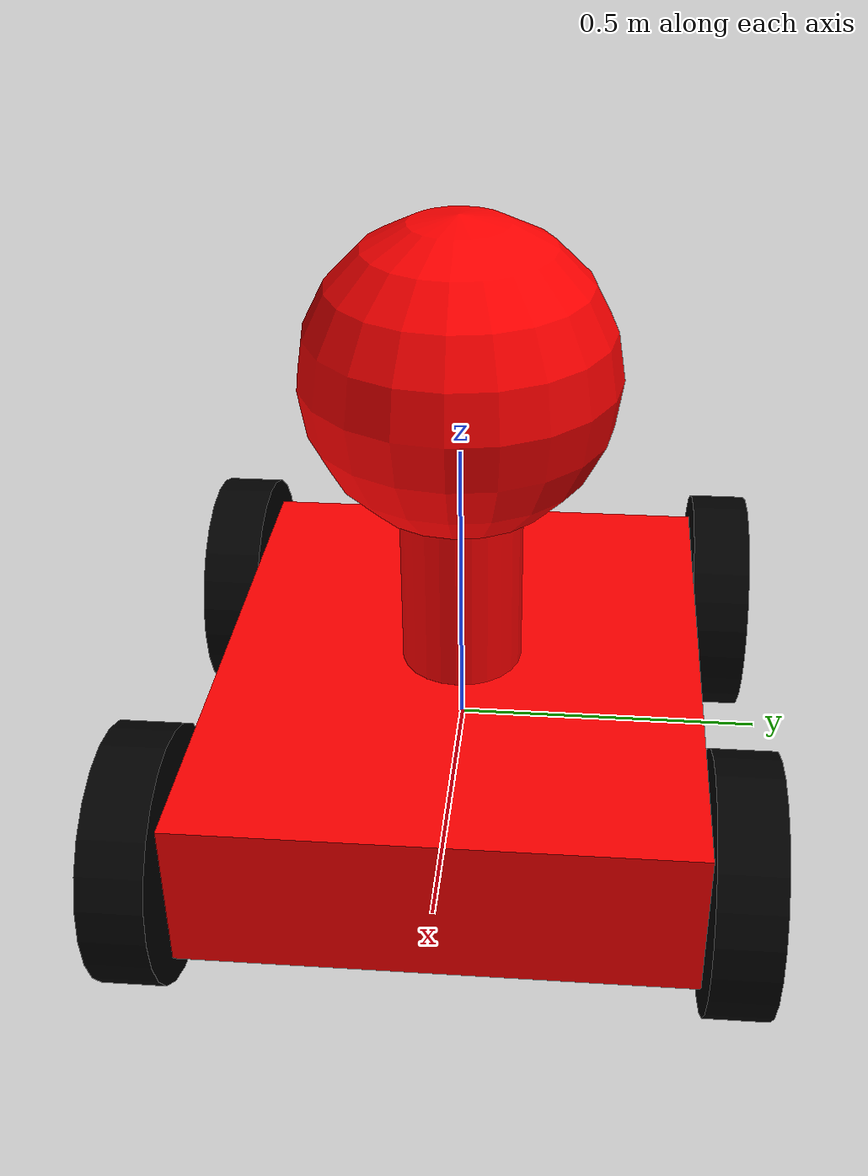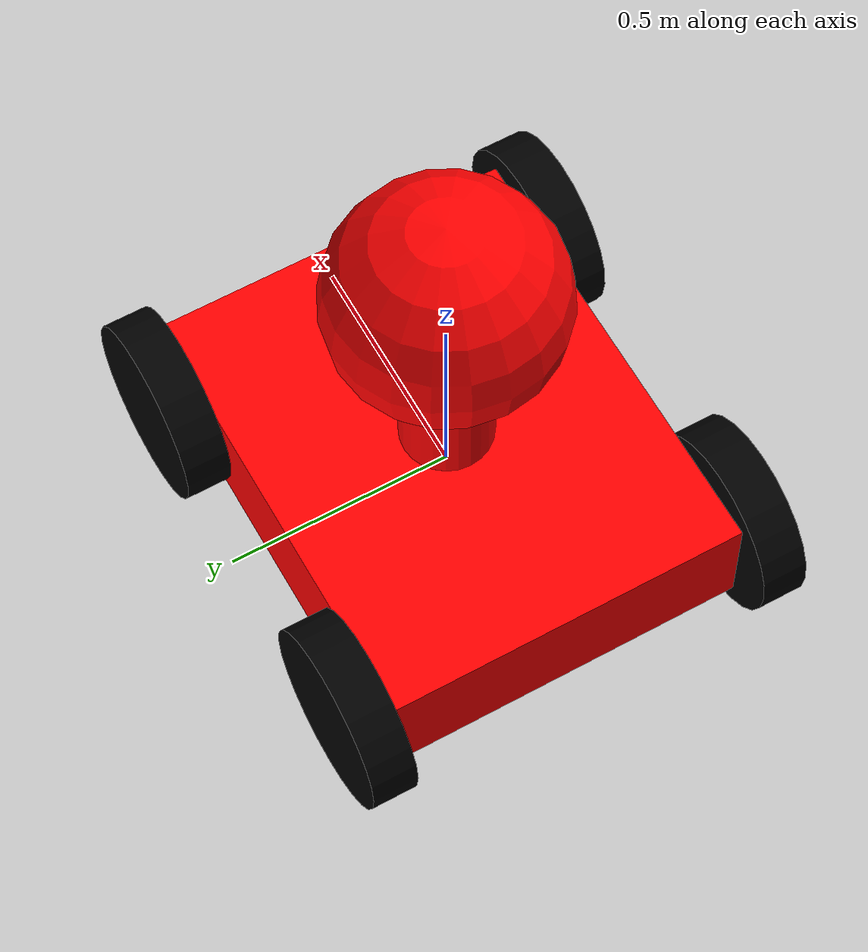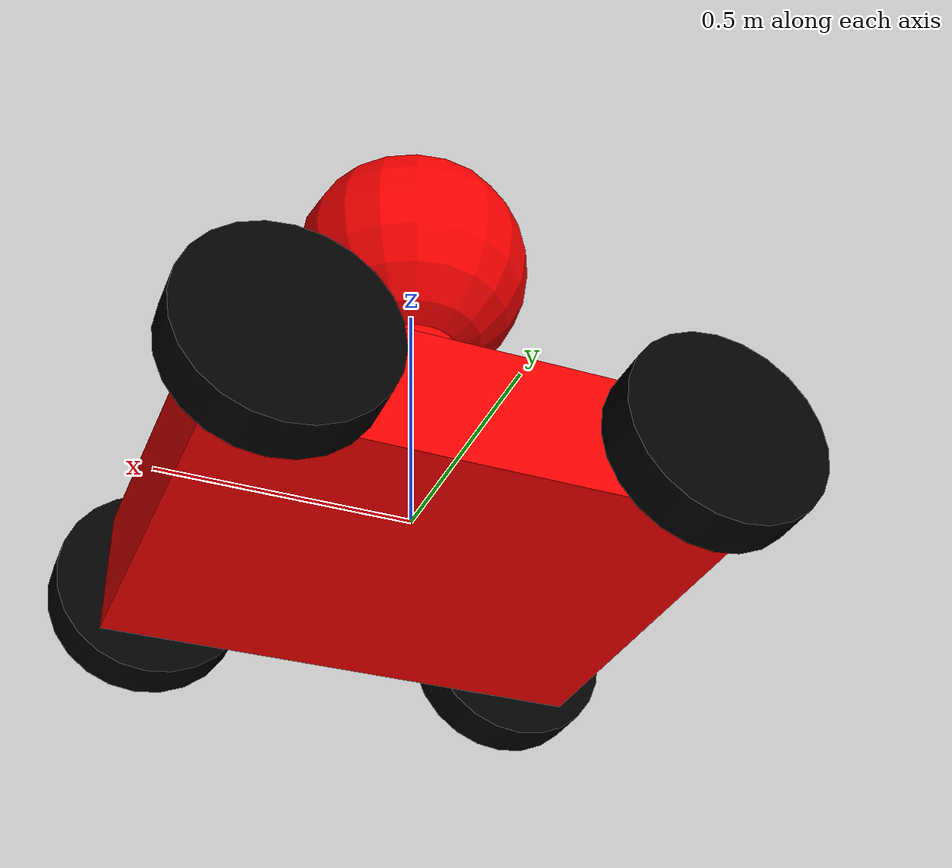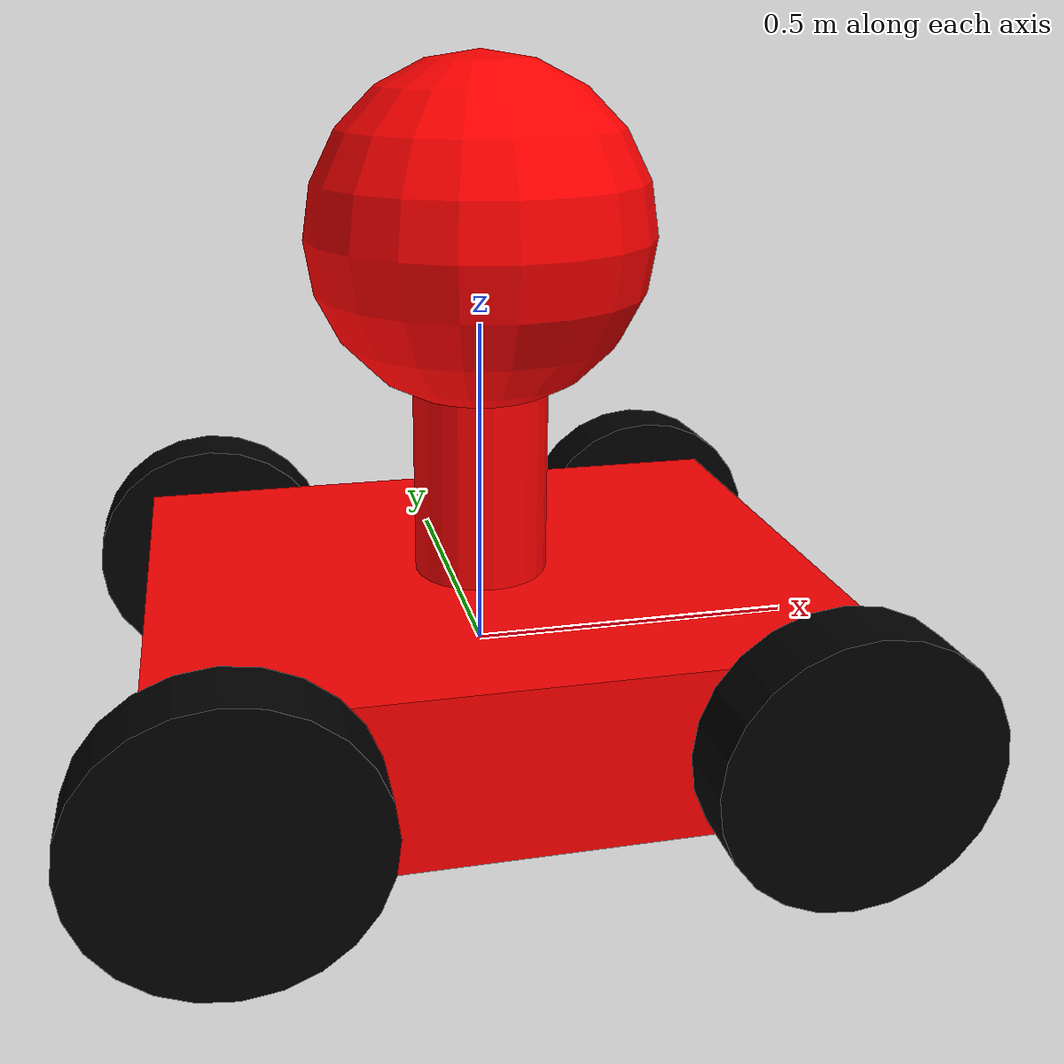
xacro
<?xml version="1.0"?>
<robot xmlns:xacro="http://www.ros.org/wiki/xacro" name="ddrobot">

    <xacro:include filename="$(find ias0220_224772_vision)/urdf/ddrobot/xacro/chasis.xacro"/>
    <xacro:include filename="$(find ias0220_224772_vision)/urdf/ddrobot/xacro/wheels.xacro"/>
    <xacro:include filename="$(find ias0220_224772_vision)/urdf/ddrobot/xacro/gazebo.xacro"/>
    <xacro:include filename="$(find ias0220_224772_vision)/urdf/ddrobot/xacro/materials.xacro"/>

    <!-- Robot Base Footprint -->
    <link name="base_footprint"></link>

    <!-- Robot Chasis -->
    <xacro:chasis />

    <!-- Robot Wheels -->
    <xacro:wheel side="right" position="front" offset_x="${chasis_length/2 - 0.1}" offset_y="${-(chasis_width/2 + 0.05)}" />
    <xacro:wheel side="left" position="front" offset_x="${chasis_length/2 - 0.1}" offset_y="${chasis_width/2 + 0.05}" />
    <xacro:wheel side="right" position="back" offset_x="${-(chasis_length/2 - 0.1)}" offset_y="${-(chasis_width/2 + 0.05)}" />
    <xacro:wheel side="left" position="back" offset_x="${-(chasis_length/2 - 0.1)}" offset_y="${chasis_width/2 + 0.05}" />

</robot>

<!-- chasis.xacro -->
<robot xmlns:xacro="http://www.ros.org/wiki/xacro">

    <xacro:property name="head_mass" value="0.1" />
    <xacro:property name="head_radius" value="0.25" />
    <xacro:property name="head_inertia_calc" value="${(2/5) * head_mass * (head_radius * head_radius)}" />

    <xacro:property name="head_mount_mass" value="0.1" />
    <xacro:property name="head_mount_radius" value="0.1" />
    <xacro:property name="head_mount_height" value="0.5" />
    <xacro:property name="head_mount_inertia_calc" value="${(1/12) * head_mount_mass * ((3 * (head_mount_radius * head_mount_radius)) + (head_mount_height * head_mount_height))}" />
    <xacro:property name="head_mount_inertia_calc_izz" value="${(1/2) * head_mount_mass * (head_mount_radius * head_mount_radius)}" />

    <xacro:property name="chasis_mass" value="0.2" />
    <xacro:property name="chasis_width" value="0.8" />
    <xacro:property name="chasis_height" value="0.25" />
    <xacro:property name="chasis_length" value="1" />

    <xacro:property name="chasis_inertia_calc_ixx" value="${(1/12) * chasis_mass * ((chasis_height * chasis_height) + (chasis_length * chasis_length))}" />
    <xacro:property name="chasis_inertia_calc_iyy" value="${(1/12) * chasis_mass * ((chasis_width * chasis_width) + (chasis_height * chasis_height))}" />
    <xacro:property name="chasis_inertia_calc_izz" value="${(1/12) * chasis_mass * ((chasis_width * chasis_width) + (chasis_length * chasis_length))}" />

    <xacro:macro name="chasis">

        <!-- Robot Head -->
        <link name="head">
            <visual>
                <origin xyz="0 0 0" rpy="0.0 0.0 0.0" />
                <geometry>
                    <sphere radius="${head_radius}" />
                </geometry>
                <material name="red" />
            </visual>
            <collision>
                <origin xyz="0 0 0" rpy="0.0 0.0 0.0" />
                <geometry>
                    <sphere radius="${head_radius}" />
                </geometry>
            </collision>
            <inertial>
                <mass value="${chasis_mass}"/>
                <inertia ixx="${head_inertia_calc}" ixy="0.0" ixz="0.0" iyy="${head_inertia_calc}" iyz="0.0" izz="${head_inertia_calc}"/>
            </inertial>
        </link>
        <joint name="joint_head_mount__head" type="fixed">
            <origin xyz="0 0 0.4" rpy="0.0 0.0 0.0" />
            <parent link="head_mount"/>
            <child link="head"/>
        </joint>

        <!-- Robot Head Mount -->
        <link name="head_mount">
            <visual>
                <origin xyz="0 0 0" rpy="0 0 0"/>
                <geometry>
                    <cylinder radius="${head_mount_radius}" length="${head_mount_height}"/>
                </geometry>
                <material name="red"/>
            </visual>
            <collision>
                <origin xyz="0 0 0" rpy="0 0 0"/>
                <geometry>
                    <cylinder radius="${head_mount_radius}" length="${head_mount_height}"/>
                </geometry>
            </collision>
            <inertial>
                <mass value="${head_mount_mass}"/>
                <inertia ixx="${head_mount_inertia_calc}" ixy="0.0" ixz="0.0" iyy="${head_mount_inertia_calc}" iyz="0.0" izz="${head_mount_inertia_calc_izz}"/>
            </inertial>
        </link>
        <joint name="joint_chasis__head_mount" type="fixed">
            <origin xyz="0 0 0.23" rpy="0.0 0.0 0.0" />
            <parent link="chasis"/>
            <child link="head_mount"/>
        </joint>

        <!-- Main Robot Body  -->
        <link name="chasis">
            <visual>
                <origin xyz="0.0 0.0 0.0" rpy="0.0 0.0 0.0" />
                <geometry>
                    <box size="${chasis_length} ${chasis_width} ${chasis_height}" />
                </geometry>
                <material name="red" />
            </visual>
            <collision>
                <origin xyz="0.0 0.0 0.0" rpy="0.0 0.0 0.0" />
                <geometry>
                    <box size="${chasis_length} ${chasis_width} ${chasis_height}" />
                </geometry>
            </collision>
            <inertial>
                <mass value="${chasis_mass}"/>
                <inertia ixx="${chasis_inertia_calc_ixx}" ixy="0.0" ixz="0.0" iyy="${chasis_inertia_calc_iyy}" iyz="0.0" izz="${chasis_inertia_calc_izz}"/>
            </inertial>
        </link>
        <joint name="joint_base_footprint__chasis" type="fixed">
            <origin xyz="0 0 0" rpy="0 0 0" />
            <parent link="base_footprint"/>
            <child link="chasis"/>
        </joint>
    </xacro:macro>

</robot>

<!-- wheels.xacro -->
<robot xmlns:xacro="http://www.ros.org/wiki/xacro">

    <xacro:include filename="$(find ias0220_224772_vision)/urdf/ddrobot/xacro/transmissions.xacro"/>

    <xacro:property name="wheel_mass" value="0.015" />
    <xacro:property name="wheel_radius" value="0.2" />
    <xacro:property name="wheel_height" value="0.1" />
    <xacro:property name="wheel_inertia_calc" value="${(1/12) * wheel_mass * ((3 * (wheel_radius * wheel_radius)) + (wheel_height * wheel_height))}" />
    <xacro:property name="wheel_inertia_calc_izz" value="${(1/2) * wheel_mass * (wheel_radius * wheel_radius)}" />

    <xacro:macro name="wheel" params="side position offset_x offset_y">
        <link name="${side}_${position}_wheel">
            <visual>
                <origin xyz="0 0 0" rpy="${pi/2} 0 0"/>
                <geometry>
                    <cylinder radius="${wheel_radius}" length="${wheel_height}"/>
                </geometry>
                <material name="black"/>
            </visual>
            <collision>
                <origin xyz="0 0 0" rpy="${pi/2} 0 0"/>
                <geometry>
                    <cylinder radius="${wheel_radius}" length="${wheel_height}"/>
                </geometry>
            </collision>
            <inertial>
                <mass value="${wheel_mass}"/>
                <inertia ixx="${wheel_inertia_calc}" ixy="0.0" ixz="0.0" iyy="${wheel_inertia_calc}" iyz="0.0" izz="${wheel_inertia_calc_izz}"/>
            </inertial>
        </link>
        <joint name="joint_${side}_${position}_wheel" type="continuous">
            <parent link="chasis"/>
            <child link="${side}_${position}_wheel"/>
            <origin xyz="${offset_x} ${offset_y} 0.0" rpy="0.0 0.0 0.0"/>
            <axis xyz="0.0 1 0.0"/>
        </joint>

        <!-- Robot Joints' Transmission -->
        <xacro:wheel_transmission wheelJointName="joint_${side}_${position}_wheel"  />
    </xacro:macro>
</robot>

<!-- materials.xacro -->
<robot xmlns:xacro="http://www.ros.org/wiki/xacro">

    <material name="black">
        <color rgba="0 0 0 1"/>
    </material>

    <material name="red">
        <color rgba="1 0 0 1"/>
    </material>

</robot>
